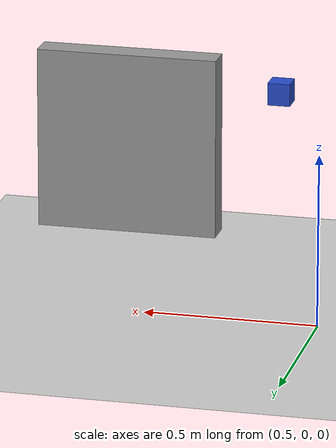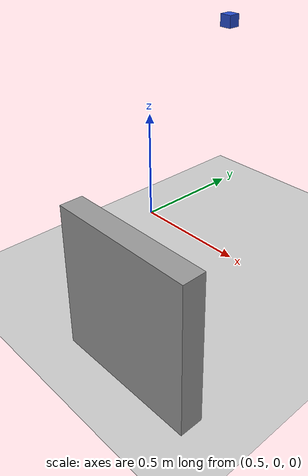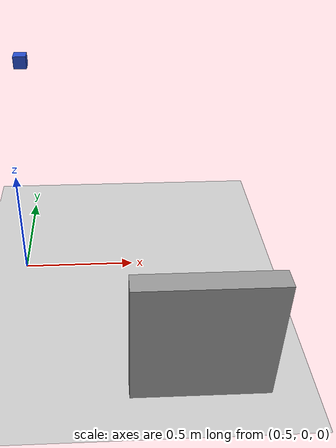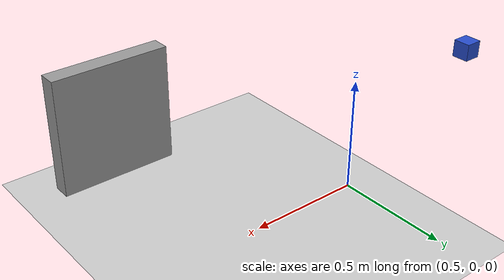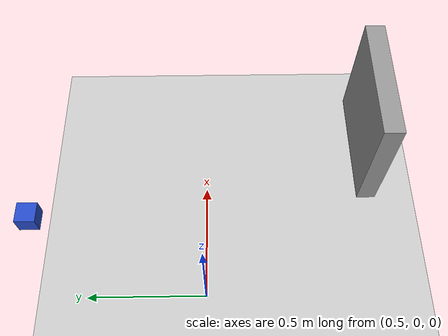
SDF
<sdf version="1.4">
 <world name="default">
  <include><uri>model://ground_plane</uri></include>
  <include><uri>model://sun</uri></include>
  <include><uri>model://demo_cube</uri><pose>0.5 0.5 0.83 0 0 0</pose></include>
  <light name="sun" type="directional">
   <pose>0 0 10 0 -0 0</pose>
   <diffuse>0.8 0.8 0.8 1</diffuse>
   <specular>0.1 0.1 0.1 1</specular>
   <attenuation>
    <range>1000</range>
    <constant>0.9</constant>
    <linear>0.01</linear>
    <quadratic>0.001</quadratic>
   </attenuation>
   <direction>-0.5 0.5 -1</direction>
  </light>
  <model name="unit_box">
   <pose>1.22582 -0.726709 0.271859 -1e-06 -3e-06 4.2e-05</pose>
   <link name="link">
    <inertial>
     <mass>1</mass>
     <inertia>
      <ixx>0.166667</ixx>
      <ixy>0</ixy>
      <ixz>0</ixz>
      <iyy>0.166667</iyy>
      <iyz>0</iyz>
      <izz>0.166667</izz>
     </inertia>
    </inertial>
    <collision name="collision">
     <geometry><box><size>0.540614 0.0836027 0.54373</size></box></geometry>
    </collision>
    <visual name="visual">
     <geometry><box><size>0.540614 0.0836027 0.54373</size></box></geometry>
     <material>
      <script><name>Gazebo/Grey</name><uri>file://media/materials/scripts/gazebo.material</uri></script>
     </material>
    </visual>
   </link>
  </model>
 </world>
</sdf>

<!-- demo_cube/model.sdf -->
<sdf version='1.6'>
  <model name="demo_cube">
      <static>0</static>
      <link name='link'>
        <inertial>
          <mass>0.25</mass>
          <inertia>
            <ixx>0.001</ixx>
            <ixy>0.000000</ixy>
            <ixz>0.000000</ixz>
            <iyy>0.001</iyy>
            <iyz>0.000000</iyz>
            <izz>0.001</izz>
          </inertia>
        </inertial>
        <collision name='collision'>
          <geometry>
            <box>
              <size>0.060 0.060 0.060</size>
            </box>
          </geometry>
          <surface>
            <friction>
              <ode>
                <mu>30.0</mu>
                <mu2>30.0</mu2>
              </ode>
            </friction>
            <contact>
              <ode>
                <kp>1000000.0</kp>
                <kd>100.0</kd>
                <max_vel>1.0</max_vel>
                <min_depth>0.002</min_depth>
              </ode>
            </contact>
          </surface>
        </collision>
        <visual name='visual'>
          <geometry>
            <box>
              <size>0.060 0.060 0.060</size>
            </box>
          </geometry>
          <material>
            <script>
              <uri>file://media/materials/scripts/gazebo.material</uri>
              <name>Gazebo/Blue</name>
            </script>
          </material>
        </visual>
        <velocity_decay>
          <linear>0.000000</linear>
          <angular>0.000000</angular>
        </velocity_decay>
        <self_collide>0</self_collide>
        <kinematic>0</kinematic>
        <gravity>1</gravity>
      </link>
  </model>
</sdf>
